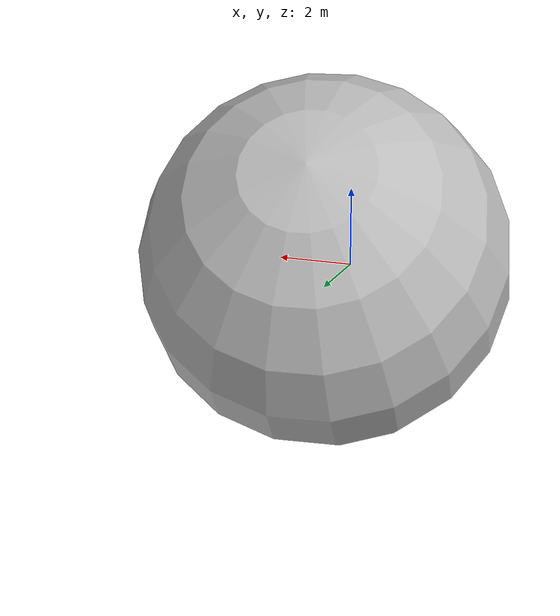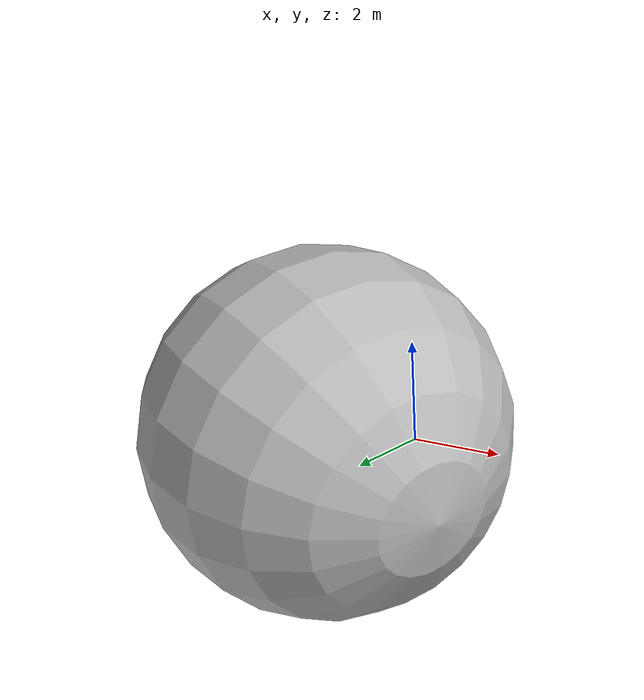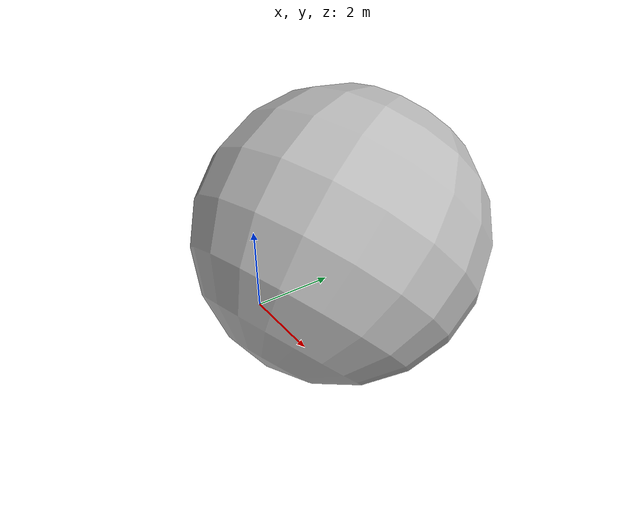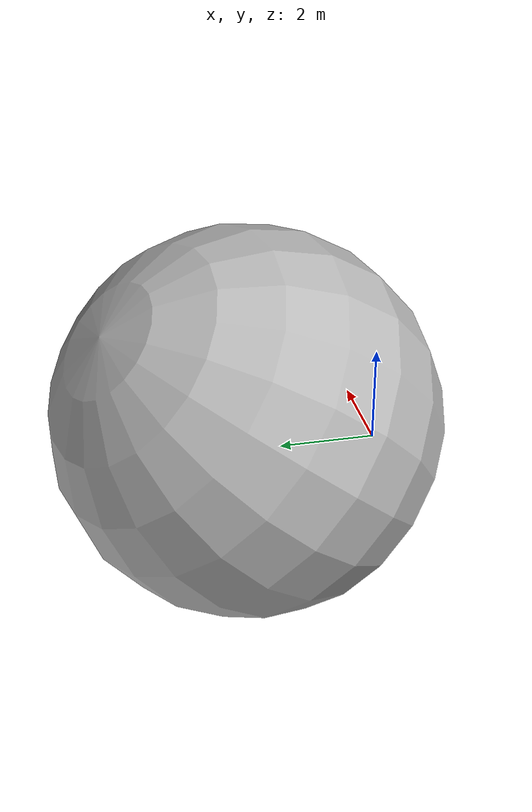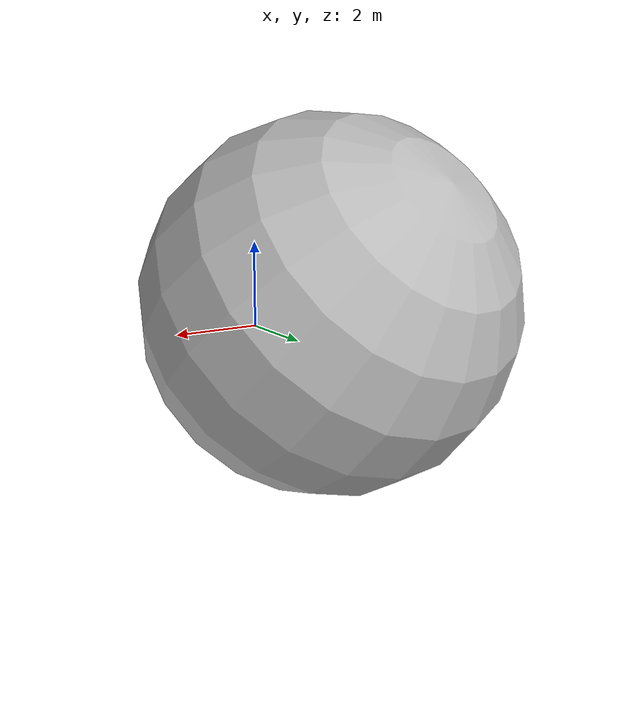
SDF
<?xml version='1.0'?>
<sdf version='1.6'>
		<model name="testvar">
			<self_collide>true</self_collide>
			<pose>0.0 0.0 0.0 0.0 0.0 0.0</pose>
			<!-- Start of parts of the pmodel testvar -->
				<!-- Start of declarations for part "testvar::TEST" -->
					<!-- Start of parts of part "testvar::TEST" -->
					<!-- End of parts of part "testvar::TEST" -->

					<!-- Start of links of part "testvar::TEST" -->
					<!-- link full name is testvar::TEST::Wheel -->
					<link name="1-Wheel">
							<pose>1.027278922195039 -0.01751559451208167 0.02500000037252903 1.5707499980926514 -0.0 2.0</pose>
							<inertial>
								<pose>0.0 0.0 0.0 0.0 0.0 0.0</pose>
								<inertia>
									<ixx>1.0</ixx>
									<ixy>0.0</ixy>
									<ixz>0.0</ixz>
									<iyy>1.0</iyy>
									<iyz>0.0</iyz>
									<izz>1.0</izz>
								</inertia>
								<mass>1.0</mass>
							</inertial>
					</link>
					<!-- link full name is testvar::TEST::Track -->
					<link name="2-Track">
							<pose>1.0 -0.029999999329447746 0.02500000037252903 0.0 0.0 2.0</pose>
							<inertial>
								<pose>0.0 0.0 0.0 0.0 0.0 0.0</pose>
								<inertia>
									<ixx>1.0</ixx>
									<ixy>0.0</ixy>
									<ixz>0.0</ixz>
									<iyy>1.0</iyy>
									<iyz>0.0</iyz>
									<izz>1.0</izz>
								</inertia>
								<mass>1.0</mass>
							</inertial>
							<!-- body full name is testvar::TEST::Track::my_body -->
							<collision name="1--my_body">
								<laser_retro>0.0</laser_retro>
								<pose>3.1414999961853027 0.05000000074505806 0.8999999761581421 3.0 4.0 0.0</pose>
								<geometry>
									<sphere>
										<radius>4.0</radius>
									</sphere>
								</geometry>
								<surface>
									<bounce>
										<restitution_coefficient>0.0</restitution_coefficient>
										<threshold>100000.0</threshold>
									</bounce>
									<friction>
										<ode>
											<mu>1.0</mu>
											<mu2>1.0</mu2>
											<fdir1>0.0 0.0 0.0</fdir1>
											<slip1>0.0</slip1>
											<slip2>0.0</slip2>
										</ode>
										<torsional>
											<coefficient>1.0</coefficient>
											<surface_radius>0.0</surface_radius>
										</torsional>
									</friction>
								</surface>
							</collision>
							<visual name="1--my_body">
								<laser_retro>0.0</laser_retro>
								<pose>3.1414999961853027 0.05000000074505806 0.8999999761581421 3.0 4.0 0.0</pose>
								<geometry>
									<sphere>
										<radius>4.0</radius>
									</sphere>
								</geometry>
								<surface>
									<bounce>
										<restitution_coefficient>0.0</restitution_coefficient>
										<threshold>100000.0</threshold>
									</bounce>
									<friction>
										<ode>
											<mu>1.0</mu>
											<mu2>1.0</mu2>
											<fdir1>0.0 0.0 0.0</fdir1>
											<slip1>0.0</slip1>
											<slip2>0.0</slip2>
										</ode>
										<torsional>
											<coefficient>1.0</coefficient>
											<surface_radius>0.0</surface_radius>
										</torsional>
									</friction>
								</surface>
							</visual>
							<!-- WARNING: The SDF generator relies on annotations of the sensor my_sonar_sensor to specify aspects of the
							sensor that are accounted for in the equations. -->
							<!-- sensor simple name is my_sonar_sensor -->
							<sensor name="my_sonar_sensor" type="sonar">
								<pose>0.0 0.0 0.8999999761581421 2.2831853071795867 1.57079632679 0.0</pose>
								<visualize>true</visualize>
								<always_on>true</always_on>
								<update_rate>1.0</update_rate>
								<sonar>
									<min>4</min>
									<max>4.0</max>
									<radius>-0.029999999329447746</radius>
								</sonar>
							</sensor>
					</link>
					<!-- End of links of part "testvar::TEST" -->

					<!-- Start of joints of part "testvar::TEST" -->
					<!-- End of joints of part "testvar::TEST" -->

					<!-- Start of fixed connections of part "testvar::TEST" -->

					<!-- End of fixed connections of part "testvar::TEST" -->
				<!-- End of declarations for part "testvar::TEST" -->
			<!-- End of parts of the pmodel testvar -->

			<!-- Start of links of the pmodel testvar -->
			<!-- link full name is testvar::Core -->
			<link name="3-Core">
					<pose>0.0 0.0 0.0 0.0 0.0 0.0</pose>
					<inertial>
						<pose>0.0 0.0 0.0 0.0 0.0 0.0</pose>
						<inertia>
							<ixx>1.0</ixx>
							<ixy>0.0</ixy>
							<ixz>0.0</ixz>
							<iyy>1.0</iyy>
							<iyz>0.0</iyz>
							<izz>1.0</izz>
						</inertia>
						<mass>1.0</mass>
					</inertial>
					<!-- WARNING: The SDF generator relies on annotations of the sensor my_sonar_sensor to specify aspects of the
					sensor that are accounted for in the equations. -->
					<!-- sensor simple name is my_sonar_sensor -->
					<sensor name="my_sonar_sensor" type="sonar">
						<pose>0.0 0.0 0.8999999761581421 -0.0 1.57079632679 0.0</pose>
						<visualize>true</visualize>
						<always_on>true</always_on>
						<update_rate>1.0</update_rate>
						<sonar>
							<min>3.0</min>
							<max>3</max>
							<radius>1.0</radius>
						</sonar>
					</sensor>
			</link>
			<!-- End of links of the pmodel testvar -->

			<!-- Start of joints of the pmodel testvar -->
			<!-- End of joints of the pmodel testvar -->

			<!-- Start of fixed connections of the pmodel testvar -->
			<!-- fixed joint full name is testvar::Core::fixedJoint::testvar::TEST::Track from testvar::Core to testvar::TEST::Track -->
			<joint name="4-fixedJoint" type="fixed">
				<parent>3-Core</parent>
				<child>2-Track</child>
				<axis><xyz>0 0 1</xyz></axis>
			</joint>
			<!-- End of fixed connections of the pmodel testvar -->
		</model>
</sdf>
